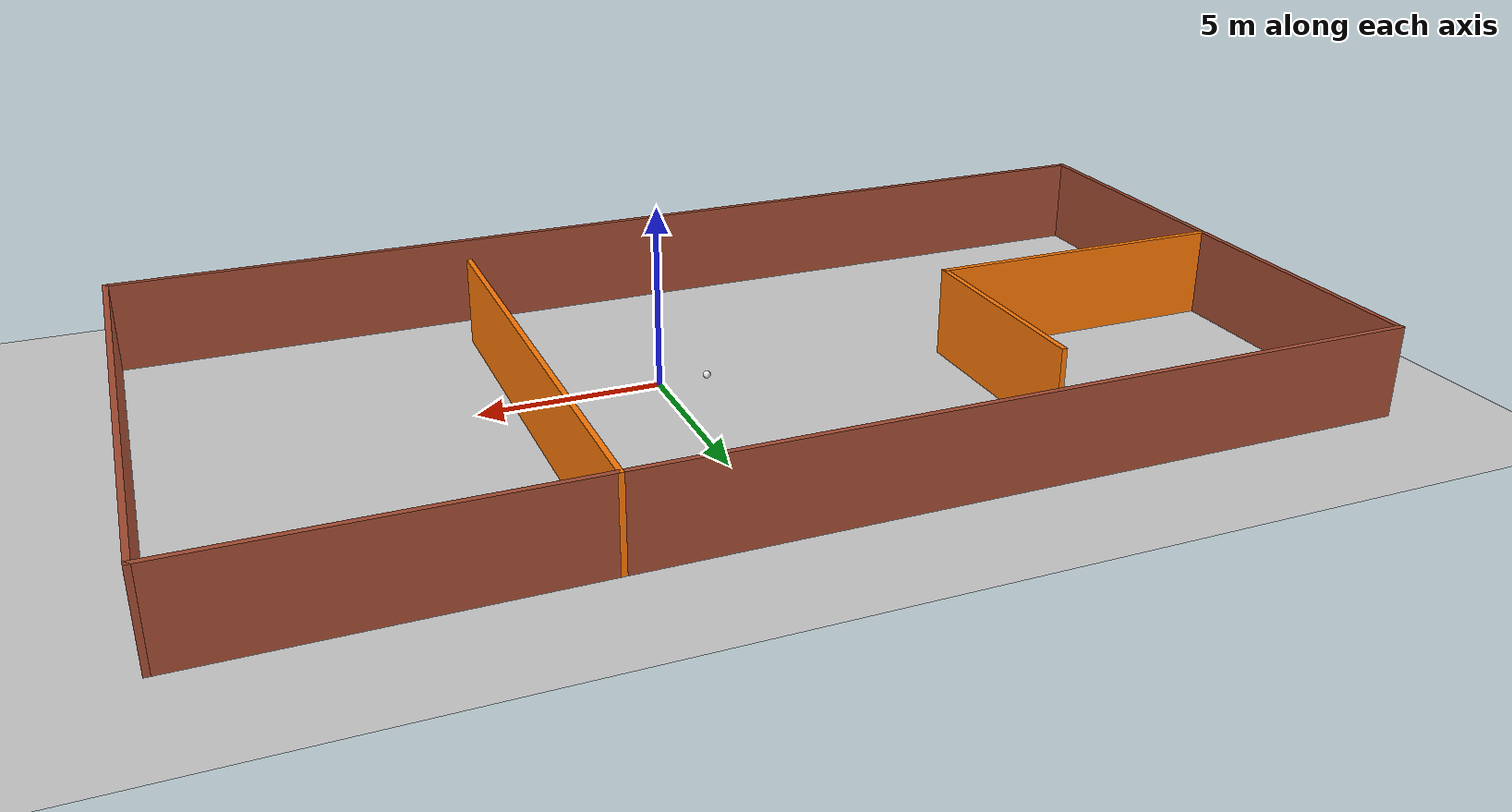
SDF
<sdf version="1.7">
 <world name="default">
  <light name="sun" type="directional">
   <pose>0 0 10 0 -0 0</pose>
   <diffuse>0.8 0.8 0.8 1</diffuse>
   <specular>0.2 0.2 0.2 1</specular>
   <attenuation>
    <range>1000</range>
    <constant>0.9</constant>
    <linear>0.01</linear>
    <quadratic>0.001</quadratic>
   </attenuation>
   <direction>-0.5 0.1 -0.9</direction>
   <spot><inner_angle>0</inner_angle><outer_angle>0</outer_angle><falloff>0</falloff></spot>
  </light>
  <model name="ground_plane">
   <static>1</static>
   <link name="link">
    <collision name="collision">
     <geometry><plane><normal>0 0 1</normal><size>100 100</size></plane></geometry>
     <surface>
      <contact><collide_bitmask>65535</collide_bitmask></contact>
      <friction><ode><mu>100</mu><mu2>50</mu2></ode></friction>
     </surface>
    </collision>
    <visual name="visual">
     <cast_shadows>0</cast_shadows>
     <geometry><plane><normal>0 0 1</normal><size>100 100</size></plane></geometry>
     <material>
      <script><uri>file://media/materials/scripts/gazebo.material</uri><name>Gazebo/Grey</name></script>
     </material>
    </visual>
   </link>
  </model>
  <gravity>0 0 -9.8</gravity>
  <magnetic_field>6e-06 2.3e-05 -4.2e-05</magnetic_field>
  <atmosphere type="adiabatic"/>
  <physics type="ode">
   <max_step_size>0.001</max_step_size>
   <real_time_factor>1</real_time_factor>
   <real_time_update_rate>1000</real_time_update_rate>
  </physics>
  <scene><ambient>0.4 0.4 0.4 1</ambient><background>0.7 0.7 0.7 1</background><shadows>1</shadows></scene>
  <spherical_coordinates>
   <surface_model>EARTH_WGS84</surface_model>
   <latitude_deg>0</latitude_deg>
   <longitude_deg>0</longitude_deg>
   <elevation>0</elevation>
   <heading_deg>0</heading_deg>
  </spherical_coordinates>
  <model name="myhouse">
   <pose>-1.63966 1.12186 0 0 -0 0</pose>
   <link name="Wall_10">
    <collision name="Wall_10_Collision">
     <geometry><box><size>13.75 0.15 2.5</size></box></geometry>
     <pose>0 0 1.25 0 -0 0</pose>
    </collision>
    <visual name="Wall_10_Visual">
     <pose>0 0 1.25 0 -0 0</pose>
     <geometry><box><size>13.75 0.15 2.5</size></box></geometry>
     <material>
      <script><uri>file://media/materials/scripts/gazebo.material</uri><name>Gazebo/Grey</name></script>
      <ambient>0.996078 0.47451 0.0196078 1</ambient>
     </material>
     <meta><layer>0</layer></meta>
    </visual>
    <pose>5.57621 0.875 0 0 -0 -1.5708</pose>
   </link>
   <link name="Wall_2">
    <collision name="Wall_2_Collision">
     <geometry><box><size>15.5 0.15 2.5</size></box></geometry>
     <pose>0 0 1.25 0 -0 0</pose>
    </collision>
    <visual name="Wall_2_Visual">
     <pose>0 0 1.25 0 -0 0</pose>
     <geometry><box><size>15.5 0.15 2.5</size></box></geometry>
     <material>
      <script><uri>file://media/materials/scripts/gazebo.material</uri><name>Gazebo/Bricks</name></script>
      <ambient>1 1 1 1</ambient>
     </material>
     <meta><layer>0</layer></meta>
    </visual>
    <pose>-15.175 -0 0 0 -0 -1.5708</pose>
   </link>
   <link name="Wall_3">
    <collision name="Wall_3_Collision">
     <geometry><box><size>30.5 0.15 2.5</size></box></geometry>
     <pose>0 0 1.25 0 -0 0</pose>
    </collision>
    <visual name="Wall_3_Visual">
     <pose>0 0 1.25 0 -0 0</pose>
     <geometry><box><size>30.5 0.15 2.5</size></box></geometry>
     <material>
      <script><uri>file://media/materials/scripts/gazebo.material</uri><name>Gazebo/Bricks</name></script>
      <ambient>1 1 1 1</ambient>
     </material>
     <meta><layer>0</layer></meta>
    </visual>
    <pose>0 -7.675 0 0 -0 0</pose>
   </link>
   <link name="Wall_4">
    <collision name="Wall_4_Collision">
     <geometry><box><size>15.5 0.15 2.5</size></box></geometry>
     <pose>0 0 1.25 0 -0 0</pose>
    </collision>
    <visual name="Wall_4_Visual">
     <pose>0 0 1.25 0 -0 0</pose>
     <geometry><box><size>15.5 0.15 2.5</size></box></geometry>
     <material>
      <script><uri>file://media/materials/scripts/gazebo.material</uri><name>Gazebo/Bricks</name></script>
      <ambient>1 1 1 1</ambient>
     </material>
     <meta><layer>0</layer></meta>
    </visual>
    <pose>15.175 -0 0 0 -0 1.5708</pose>
   </link>
   <link name="Wall_5">
    <collision name="Wall_5_Collision">
     <geometry><box><size>30.5 0.15 2.5</size></box></geometry>
     <pose>0 0 1.25 0 -0 0</pose>
    </collision>
    <visual name="Wall_5_Visual">
     <pose>0 0 1.25 0 -0 0</pose>
     <geometry><box><size>30.5 0.15 2.5</size></box></geometry>
     <material>
      <script><uri>file://media/materials/scripts/gazebo.material</uri><name>Gazebo/Bricks</name></script>
      <ambient>0.996078 0.47451 0.0196078 1</ambient>
     </material>
     <meta><layer>0</layer></meta>
    </visual>
    <pose>0 7.675 0 0 -0 3.14159</pose>
   </link>
   <link name="Wall_7">
    <collision name="Wall_7_Collision">
     <geometry><box><size>8.75 0.15 2.5</size></box></geometry>
     <pose>0 0 1.25 0 -0 0</pose>
    </collision>
    <visual name="Wall_7_Visual">
     <pose>0 0 1.25 0 -0 0</pose>
     <geometry><box><size>8.75 0.15 2.5</size></box></geometry>
     <material>
      <script><uri>file://media/materials/scripts/gazebo.material</uri><name>Gazebo/Grey</name></script>
      <ambient>0.996078 0.47451 0.0196078 1</ambient>
     </material>
     <meta><layer>0</layer></meta>
    </visual>
    <pose>-10.7961 -0.215195 0 0 -0 0</pose>
   </link>
   <link name="Wall_8">
    <collision name="Wall_8_Collision">
     <geometry><box><size>6 0.15 2.5</size></box></geometry>
     <pose>0 0 1.25 0 -0 0</pose>
    </collision>
    <visual name="Wall_8_Visual">
     <pose>0 0 1.25 0 -0 0</pose>
     <geometry><box><size>6 0.15 2.5</size></box></geometry>
     <material>
      <script><uri>file://media/materials/scripts/gazebo.material</uri><name>Gazebo/Grey</name></script>
      <ambient>0.996078 0.47451 0.0196078 1</ambient>
     </material>
     <meta><layer>0</layer></meta>
    </visual>
    <pose>-6.4961 2.7098 0 0 -0 1.5708</pose>
   </link>
   <static>1</static>
  </model>
  <model name="ball">
   <link name="link_0">
    <inertial>
     <mass>1</mass>
     <inertia><ixx>0.1</ixx><ixy>0</ixy><ixz>0</ixz><iyy>0.1</iyy><iyz>0</iyz><izz>0.1</izz></inertia>
    </inertial>
    <visual name="visual">
     <geometry><sphere><radius>0.1</radius></sphere></geometry>
     <material>
      <lighting>1</lighting>
      <script><uri>file://media/materials/scripts/gazebo.material</uri><name>Gazebo/White</name></script>
      <shader type="pixel"><normal_map>__default__</normal_map></shader>
      <ambient>1 1 1 1</ambient>
      <diffuse>1 1 1 1</diffuse>
      <specular>0.01 0.01 0.01 1</specular>
      <emissive>1 1 1 1</emissive>
     </material>
    </visual>
    <collision name="collision">
     <geometry><sphere><radius>0.1</radius></sphere></geometry>
     <surface>
      <friction>
       <ode><mu>1</mu><mu2>1</mu2><fdir1>0 0 0</fdir1><slip1>0</slip1><slip2>0</slip2></ode>
       <torsional>
        <coefficient>1</coefficient>
        <patch_radius>0</patch_radius>
        <surface_radius>0</surface_radius>
        <use_patch_radius>1</use_patch_radius>
        <ode><slip>0</slip></ode>
       </torsional>
      </friction>
      <bounce><restitution_coefficient>0</restitution_coefficient><threshold>1e+06</threshold></bounce>
      <contact>
       <collide_without_contact>0</collide_without_contact>
       <collide_without_contact_bitmask>1</collide_without_contact_bitmask>
       <collide_bitmask>1</collide_bitmask>
       <ode>
        <soft_cfm>0</soft_cfm>
        <soft_erp>0.2</soft_erp>
        <kp>1e+13</kp>
        <kd>1</kd>
        <max_vel>0.01</max_vel>
        <min_depth>0</min_depth>
       </ode>
       <bullet>
        <split_impulse>1</split_impulse>
        <split_impulse_penetration_threshold>-0.01</split_impulse_penetration_threshold>
        <soft_cfm>0</soft_cfm>
        <soft_erp>0.2</soft_erp>
        <kp>1e+13</kp>
        <kd>1</kd>
       </bullet>
      </contact>
     </surface>
    </collision>
   </link>
   <static>0</static>
   <pose>-1.35286 0.032164 0.1 0 -0 0</pose>
  </model>
 </world>
</sdf>
